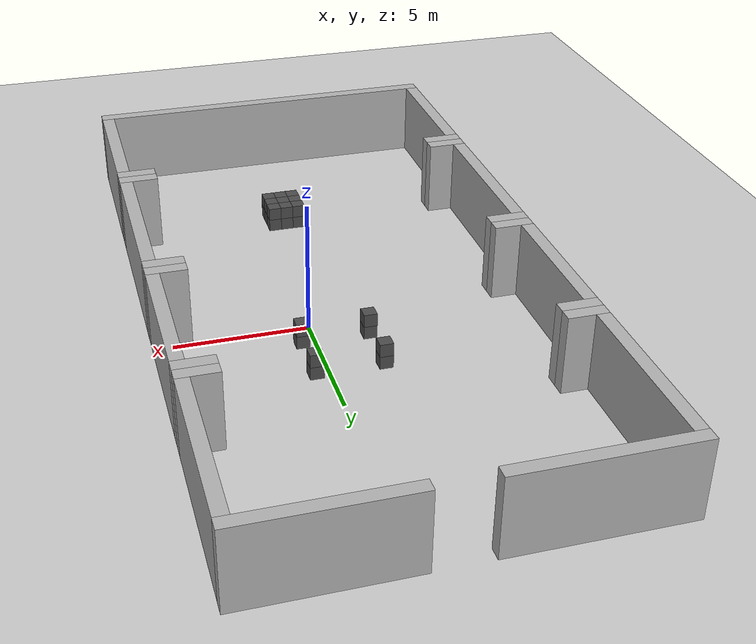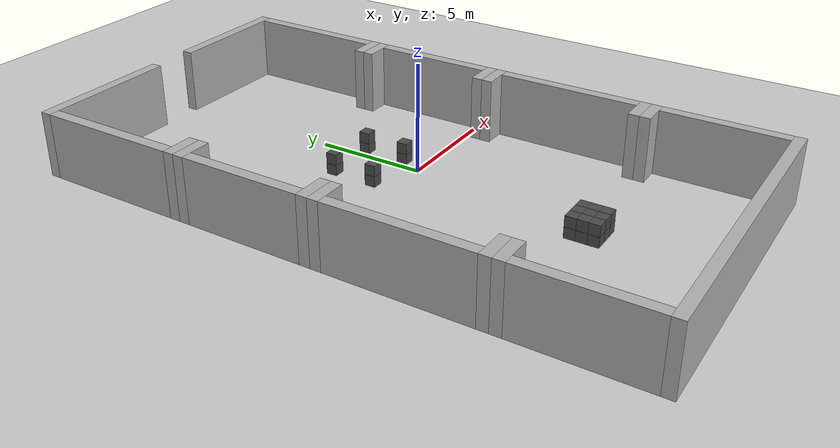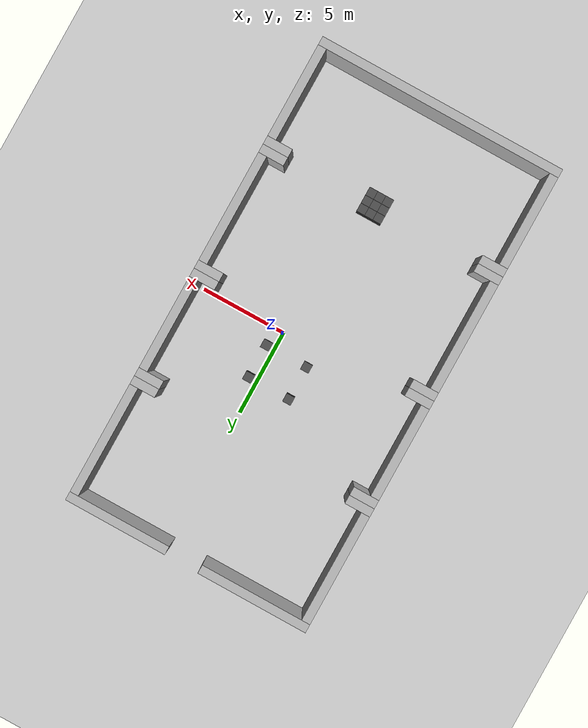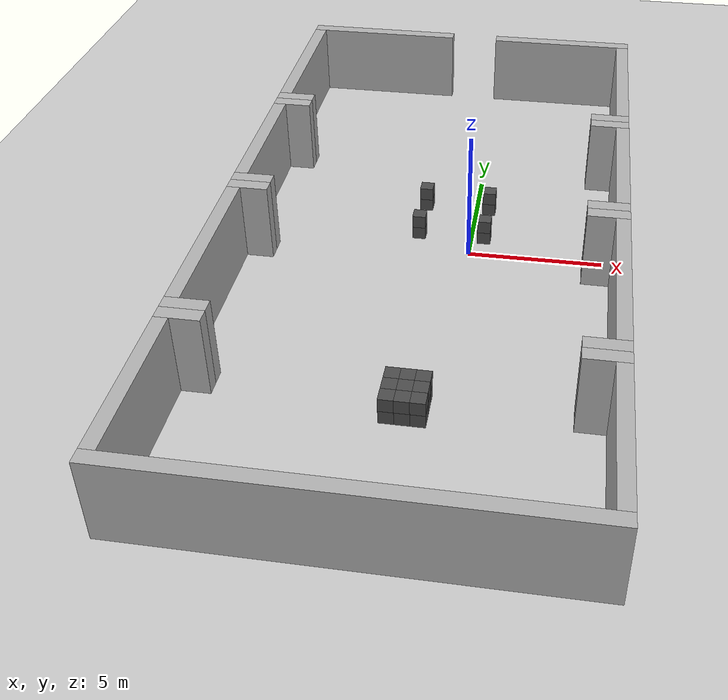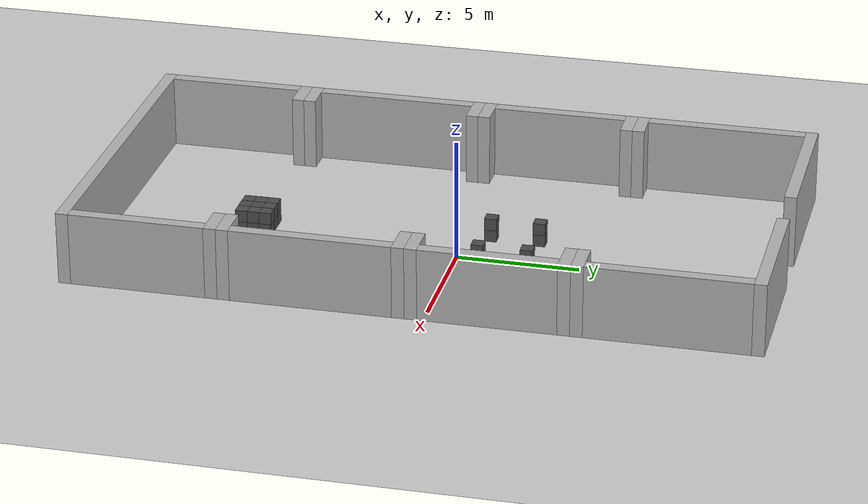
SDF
<sdf version="1.6">
 <world name="default">
  <light name="sun" type="directional">
   <cast_shadows>0</cast_shadows>
   <pose>0 0 10 0 -0 0</pose>
   <diffuse>0.8 0.8 0.8 1</diffuse>
   <specular>0.2 0.2 0.2 1</specular>
   <attenuation>
    <range>1000</range>
    <constant>0.9</constant>
    <linear>0.01</linear>
    <quadratic>0.001</quadratic>
   </attenuation>
   <direction>-0.5 0.1 -0.9</direction>
  </light>
  <include><uri>model://ground_plane</uri></include>
  <gravity>0 0 -9.8</gravity>
  <magnetic_field>6e-06 2.3e-05 -4.2e-05</magnetic_field>
  <atmosphere type="adiabatic"/>
  <physics name="default_physics" default="0" type="ode">
   <max_step_size>0.001</max_step_size>
   <real_time_factor>1</real_time_factor>
   <real_time_update_rate>1000</real_time_update_rate>
  </physics>
  <scene><ambient>0.4 0.4 0.4 1</ambient><background>0.7 0.7 0.7 1</background><shadows>0</shadows></scene>
  <spherical_coordinates>
   <surface_model>EARTH_WGS84</surface_model>
   <latitude_deg>0</latitude_deg>
   <longitude_deg>0</longitude_deg>
   <elevation>0</elevation>
   <heading_deg>0</heading_deg>
  </spherical_coordinates>
  <model name="wall_0">
   <pose frame="sim_world">-8.5 -11.5 1.5 0 0 0</pose>
   <static>True</static>
   <link name="wall_0_link">
    <inertial>
     <mass>100</mass>
     <inertia>
      <ixx>0.166667</ixx>
      <ixy>0</ixy>
      <ixz>0</ixz>
      <iyy>0.166667</iyy>
      <iyz>0</iyz>
      <izz>0.166667</izz>
     </inertia>
    </inertial>
    <collision name="wall_0_collision">
     <geometry><box><size>0.5 5.5 3.0</size></box></geometry>
     <max_contacts>100</max_contacts>
    </collision>
    <visual name="wall_0_visual">
     <geometry><box><size>0.5 5.5 3.0</size></box></geometry>
     <material><ambient>0.7 0.7 0.7 1</ambient><diffuse>0.7 0.7 0.7 1</diffuse></material>
    </visual>
   </link>
  </model>
  <model name="wall_1">
   <pose frame="sim_world">-8.5 -4.5 1.5 0 0 0</pose>
   <static>True</static>
   <link name="wall_1_link">
    <inertial>
     <mass>100</mass>
     <inertia>
      <ixx>0.166667</ixx>
      <ixy>0</ixy>
      <ixz>0</ixz>
      <iyy>0.166667</iyy>
      <iyz>0</iyz>
      <izz>0.166667</izz>
     </inertia>
    </inertial>
    <collision name="wall_1_collision">
     <geometry><box><size>0.5 6.5 3.0</size></box></geometry>
     <max_contacts>100</max_contacts>
    </collision>
    <visual name="wall_1_visual">
     <geometry><box><size>0.5 6.5 3.0</size></box></geometry>
     <material><ambient>0.7 0.7 0.7 1</ambient><diffuse>0.7 0.7 0.7 1</diffuse></material>
    </visual>
   </link>
  </model>
  <model name="wall_2">
   <pose frame="sim_world">-8.5 2.5 1.5 0 0 0</pose>
   <static>True</static>
   <link name="wall_2_link">
    <inertial>
     <mass>100</mass>
     <inertia>
      <ixx>0.166667</ixx>
      <ixy>0</ixy>
      <ixz>0</ixz>
      <iyy>0.166667</iyy>
      <iyz>0</iyz>
      <izz>0.166667</izz>
     </inertia>
    </inertial>
    <collision name="wall_2_collision">
     <geometry><box><size>0.5 5.5 3.0</size></box></geometry>
     <max_contacts>100</max_contacts>
    </collision>
    <visual name="wall_2_visual">
     <geometry><box><size>0.5 5.5 3.0</size></box></geometry>
     <material><ambient>0.7 0.7 0.7 1</ambient><diffuse>0.7 0.7 0.7 1</diffuse></material>
    </visual>
   </link>
  </model>
  <model name="wall_3">
   <pose frame="sim_world">-8.5 9.5 1.5 0 0 0</pose>
   <static>True</static>
   <link name="wall_3_link">
    <inertial>
     <mass>100</mass>
     <inertia>
      <ixx>0.166667</ixx>
      <ixy>0</ixy>
      <ixz>0</ixz>
      <iyy>0.166667</iyy>
      <iyz>0</iyz>
      <izz>0.166667</izz>
     </inertia>
    </inertial>
    <collision name="wall_3_collision">
     <geometry><box><size>0.5 6.5 3.0</size></box></geometry>
     <max_contacts>100</max_contacts>
    </collision>
    <visual name="wall_3_visual">
     <geometry><box><size>0.5 6.5 3.0</size></box></geometry>
     <material><ambient>0.7 0.7 0.7 1</ambient><diffuse>0.7 0.7 0.7 1</diffuse></material>
    </visual>
   </link>
  </model>
  <model name="wall_4">
   <pose frame="sim_world">5.5 -11.5 1.5 0 0 0</pose>
   <static>True</static>
   <link name="wall_4_link">
    <inertial>
     <mass>100</mass>
     <inertia>
      <ixx>0.166667</ixx>
      <ixy>0</ixy>
      <ixz>0</ixz>
      <iyy>0.166667</iyy>
      <iyz>0</iyz>
      <izz>0.166667</izz>
     </inertia>
    </inertial>
    <collision name="wall_4_collision">
     <geometry><box><size>0.5 5.5 3.0</size></box></geometry>
     <max_contacts>100</max_contacts>
    </collision>
    <visual name="wall_4_visual">
     <geometry><box><size>0.5 5.5 3.0</size></box></geometry>
     <material><ambient>0.7 0.7 0.7 1</ambient><diffuse>0.7 0.7 0.7 1</diffuse></material>
    </visual>
   </link>
  </model>
  <model name="wall_5">
   <pose frame="sim_world">5.5 -4.5 1.5 0 0 0</pose>
   <static>True</static>
   <link name="wall_5_link">
    <inertial>
     <mass>100</mass>
     <inertia>
      <ixx>0.166667</ixx>
      <ixy>0</ixy>
      <ixz>0</ixz>
      <iyy>0.166667</iyy>
      <iyz>0</iyz>
      <izz>0.166667</izz>
     </inertia>
    </inertial>
    <collision name="wall_5_collision">
     <geometry><box><size>0.5 6.5 3.0</size></box></geometry>
     <max_contacts>100</max_contacts>
    </collision>
    <visual name="wall_5_visual">
     <geometry><box><size>0.5 6.5 3.0</size></box></geometry>
     <material><ambient>0.7 0.7 0.7 1</ambient><diffuse>0.7 0.7 0.7 1</diffuse></material>
    </visual>
   </link>
  </model>
  <model name="wall_6">
   <pose frame="sim_world">5.5 2.5 1.5 0 0 0</pose>
   <static>True</static>
   <link name="wall_6_link">
    <inertial>
     <mass>100</mass>
     <inertia>
      <ixx>0.166667</ixx>
      <ixy>0</ixy>
      <ixz>0</ixz>
      <iyy>0.166667</iyy>
      <iyz>0</iyz>
      <izz>0.166667</izz>
     </inertia>
    </inertial>
    <collision name="wall_6_collision">
     <geometry><box><size>0.5 5.5 3.0</size></box></geometry>
     <max_contacts>100</max_contacts>
    </collision>
    <visual name="wall_6_visual">
     <geometry><box><size>0.5 5.5 3.0</size></box></geometry>
     <material><ambient>0.7 0.7 0.7 1</ambient><diffuse>0.7 0.7 0.7 1</diffuse></material>
    </visual>
   </link>
  </model>
  <model name="wall_7">
   <pose frame="sim_world">5.5 9.5 1.5 0 0 0</pose>
   <static>True</static>
   <link name="wall_7_link">
    <inertial>
     <mass>100</mass>
     <inertia>
      <ixx>0.166667</ixx>
      <ixy>0</ixy>
      <ixz>0</ixz>
      <iyy>0.166667</iyy>
      <iyz>0</iyz>
      <izz>0.166667</izz>
     </inertia>
    </inertial>
    <collision name="wall_7_collision">
     <geometry><box><size>0.5 6.5 3.0</size></box></geometry>
     <max_contacts>100</max_contacts>
    </collision>
    <visual name="wall_7_visual">
     <geometry><box><size>0.5 6.5 3.0</size></box></geometry>
     <material><ambient>0.7 0.7 0.7 1</ambient><diffuse>0.7 0.7 0.7 1</diffuse></material>
    </visual>
   </link>
  </model>
  <model name="wall_8">
   <pose frame="sim_world">-1.5 -14.5 1.5 0 0 0</pose>
   <static>True</static>
   <link name="wall_8_link">
    <inertial>
     <mass>100</mass>
     <inertia>
      <ixx>0.166667</ixx>
      <ixy>0</ixy>
      <ixz>0</ixz>
      <iyy>0.166667</iyy>
      <iyz>0</iyz>
      <izz>0.166667</izz>
     </inertia>
    </inertial>
    <collision name="wall_8_collision">
     <geometry><box><size>14.5 0.5 3.0</size></box></geometry>
     <max_contacts>100</max_contacts>
    </collision>
    <visual name="wall_8_visual">
     <geometry><box><size>14.5 0.5 3.0</size></box></geometry>
     <material><ambient>0.7 0.7 0.7 1</ambient><diffuse>0.7 0.7 0.7 1</diffuse></material>
    </visual>
   </link>
  </model>
  <model name="wall_9">
   <pose frame="sim_world">-8.0 -8.5 1.5 0 0 0</pose>
   <static>True</static>
   <link name="wall_9_link">
    <inertial>
     <mass>100</mass>
     <inertia>
      <ixx>0.166667</ixx>
      <ixy>0</ixy>
      <ixz>0</ixz>
      <iyy>0.166667</iyy>
      <iyz>0</iyz>
      <izz>0.166667</izz>
     </inertia>
    </inertial>
    <collision name="wall_9_collision">
     <geometry><box><size>1.5 0.5 3.0</size></box></geometry>
     <max_contacts>100</max_contacts>
    </collision>
    <visual name="wall_9_visual">
     <geometry><box><size>1.5 0.5 3.0</size></box></geometry>
     <material><ambient>0.7 0.7 0.7 1</ambient><diffuse>0.7 0.7 0.7 1</diffuse></material>
    </visual>
   </link>
  </model>
  <model name="wall_10">
   <pose frame="sim_world">5.0 -8.5 1.5 0 0 0</pose>
   <static>True</static>
   <link name="wall_10_link">
    <inertial>
     <mass>100</mass>
     <inertia>
      <ixx>0.166667</ixx>
      <ixy>0</ixy>
      <ixz>0</ixz>
      <iyy>0.166667</iyy>
      <iyz>0</iyz>
      <izz>0.166667</izz>
     </inertia>
    </inertial>
    <collision name="wall_10_collision">
     <geometry><box><size>1.5 0.5 3.0</size></box></geometry>
     <max_contacts>100</max_contacts>
    </collision>
    <visual name="wall_10_visual">
     <geometry><box><size>1.5 0.5 3.0</size></box></geometry>
     <material><ambient>0.7 0.7 0.7 1</ambient><diffuse>0.7 0.7 0.7 1</diffuse></material>
    </visual>
   </link>
  </model>
  <model name="wall_11">
   <pose frame="sim_world">-8.0 -8.0 1.5 0 0 0</pose>
   <static>True</static>
   <link name="wall_11_link">
    <inertial>
     <mass>100</mass>
     <inertia>
      <ixx>0.166667</ixx>
      <ixy>0</ixy>
      <ixz>0</ixz>
      <iyy>0.166667</iyy>
      <iyz>0</iyz>
      <izz>0.166667</izz>
     </inertia>
    </inertial>
    <collision name="wall_11_collision">
     <geometry><box><size>1.5 0.5 3.0</size></box></geometry>
     <max_contacts>100</max_contacts>
    </collision>
    <visual name="wall_11_visual">
     <geometry><box><size>1.5 0.5 3.0</size></box></geometry>
     <material><ambient>0.7 0.7 0.7 1</ambient><diffuse>0.7 0.7 0.7 1</diffuse></material>
    </visual>
   </link>
  </model>
  <model name="wall_12">
   <pose frame="sim_world">5.0 -8.0 1.5 0 0 0</pose>
   <static>True</static>
   <link name="wall_12_link">
    <inertial>
     <mass>100</mass>
     <inertia>
      <ixx>0.166667</ixx>
      <ixy>0</ixy>
      <ixz>0</ixz>
      <iyy>0.166667</iyy>
      <iyz>0</iyz>
      <izz>0.166667</izz>
     </inertia>
    </inertial>
    <collision name="wall_12_collision">
     <geometry><box><size>1.5 0.5 3.0</size></box></geometry>
     <max_contacts>100</max_contacts>
    </collision>
    <visual name="wall_12_visual">
     <geometry><box><size>1.5 0.5 3.0</size></box></geometry>
     <material><ambient>0.7 0.7 0.7 1</ambient><diffuse>0.7 0.7 0.7 1</diffuse></material>
    </visual>
   </link>
  </model>
  <model name="wall_13">
   <pose frame="sim_world">-8.0 -1.0 1.5 0 0 0</pose>
   <static>True</static>
   <link name="wall_13_link">
    <inertial>
     <mass>100</mass>
     <inertia>
      <ixx>0.166667</ixx>
      <ixy>0</ixy>
      <ixz>0</ixz>
      <iyy>0.166667</iyy>
      <iyz>0</iyz>
      <izz>0.166667</izz>
     </inertia>
    </inertial>
    <collision name="wall_13_collision">
     <geometry><box><size>1.5 0.5 3.0</size></box></geometry>
     <max_contacts>100</max_contacts>
    </collision>
    <visual name="wall_13_visual">
     <geometry><box><size>1.5 0.5 3.0</size></box></geometry>
     <material><ambient>0.7 0.7 0.7 1</ambient><diffuse>0.7 0.7 0.7 1</diffuse></material>
    </visual>
   </link>
  </model>
  <model name="wall_14">
   <pose frame="sim_world">5.0 -1.0 1.5 0 0 0</pose>
   <static>True</static>
   <link name="wall_14_link">
    <inertial>
     <mass>100</mass>
     <inertia>
      <ixx>0.166667</ixx>
      <ixy>0</ixy>
      <ixz>0</ixz>
      <iyy>0.166667</iyy>
      <iyz>0</iyz>
      <izz>0.166667</izz>
     </inertia>
    </inertial>
    <collision name="wall_14_collision">
     <geometry><box><size>1.5 0.5 3.0</size></box></geometry>
     <max_contacts>100</max_contacts>
    </collision>
    <visual name="wall_14_visual">
     <geometry><box><size>1.5 0.5 3.0</size></box></geometry>
     <material><ambient>0.7 0.7 0.7 1</ambient><diffuse>0.7 0.7 0.7 1</diffuse></material>
    </visual>
   </link>
  </model>
  <model name="wall_15">
   <pose frame="sim_world">-8.0 -0.5 1.5 0 0 0</pose>
   <static>True</static>
   <link name="wall_15_link">
    <inertial>
     <mass>100</mass>
     <inertia>
      <ixx>0.166667</ixx>
      <ixy>0</ixy>
      <ixz>0</ixz>
      <iyy>0.166667</iyy>
      <iyz>0</iyz>
      <izz>0.166667</izz>
     </inertia>
    </inertial>
    <collision name="wall_15_collision">
     <geometry><box><size>1.5 0.5 3.0</size></box></geometry>
     <max_contacts>100</max_contacts>
    </collision>
    <visual name="wall_15_visual">
     <geometry><box><size>1.5 0.5 3.0</size></box></geometry>
     <material><ambient>0.7 0.7 0.7 1</ambient><diffuse>0.7 0.7 0.7 1</diffuse></material>
    </visual>
   </link>
  </model>
  <model name="wall_16">
   <pose frame="sim_world">5.0 -0.5 1.5 0 0 0</pose>
   <static>True</static>
   <link name="wall_16_link">
    <inertial>
     <mass>100</mass>
     <inertia>
      <ixx>0.166667</ixx>
      <ixy>0</ixy>
      <ixz>0</ixz>
      <iyy>0.166667</iyy>
      <iyz>0</iyz>
      <izz>0.166667</izz>
     </inertia>
    </inertial>
    <collision name="wall_16_collision">
     <geometry><box><size>1.5 0.5 3.0</size></box></geometry>
     <max_contacts>100</max_contacts>
    </collision>
    <visual name="wall_16_visual">
     <geometry><box><size>1.5 0.5 3.0</size></box></geometry>
     <material><ambient>0.7 0.7 0.7 1</ambient><diffuse>0.7 0.7 0.7 1</diffuse></material>
    </visual>
   </link>
  </model>
  <model name="wall_17">
   <pose frame="sim_world">-8.0 5.5 1.5 0 0 0</pose>
   <static>True</static>
   <link name="wall_17_link">
    <inertial>
     <mass>100</mass>
     <inertia>
      <ixx>0.166667</ixx>
      <ixy>0</ixy>
      <ixz>0</ixz>
      <iyy>0.166667</iyy>
      <iyz>0</iyz>
      <izz>0.166667</izz>
     </inertia>
    </inertial>
    <collision name="wall_17_collision">
     <geometry><box><size>1.5 0.5 3.0</size></box></geometry>
     <max_contacts>100</max_contacts>
    </collision>
    <visual name="wall_17_visual">
     <geometry><box><size>1.5 0.5 3.0</size></box></geometry>
     <material><ambient>0.7 0.7 0.7 1</ambient><diffuse>0.7 0.7 0.7 1</diffuse></material>
    </visual>
   </link>
  </model>
  <model name="wall_18">
   <pose frame="sim_world">5.0 5.5 1.5 0 0 0</pose>
   <static>True</static>
   <link name="wall_18_link">
    <inertial>
     <mass>100</mass>
     <inertia>
      <ixx>0.166667</ixx>
      <ixy>0</ixy>
      <ixz>0</ixz>
      <iyy>0.166667</iyy>
      <iyz>0</iyz>
      <izz>0.166667</izz>
     </inertia>
    </inertial>
    <collision name="wall_18_collision">
     <geometry><box><size>1.5 0.5 3.0</size></box></geometry>
     <max_contacts>100</max_contacts>
    </collision>
    <visual name="wall_18_visual">
     <geometry><box><size>1.5 0.5 3.0</size></box></geometry>
     <material><ambient>0.7 0.7 0.7 1</ambient><diffuse>0.7 0.7 0.7 1</diffuse></material>
    </visual>
   </link>
  </model>
  <model name="wall_19">
   <pose frame="sim_world">-8.0 6.0 1.5 0 0 0</pose>
   <static>True</static>
   <link name="wall_19_link">
    <inertial>
     <mass>100</mass>
     <inertia>
      <ixx>0.166667</ixx>
      <ixy>0</ixy>
      <ixz>0</ixz>
      <iyy>0.166667</iyy>
      <iyz>0</iyz>
      <izz>0.166667</izz>
     </inertia>
    </inertial>
    <collision name="wall_19_collision">
     <geometry><box><size>1.5 0.5 3.0</size></box></geometry>
     <max_contacts>100</max_contacts>
    </collision>
    <visual name="wall_19_visual">
     <geometry><box><size>1.5 0.5 3.0</size></box></geometry>
     <material><ambient>0.7 0.7 0.7 1</ambient><diffuse>0.7 0.7 0.7 1</diffuse></material>
    </visual>
   </link>
  </model>
  <model name="wall_20">
   <pose frame="sim_world">5.0 6.0 1.5 0 0 0</pose>
   <static>True</static>
   <link name="wall_20_link">
    <inertial>
     <mass>100</mass>
     <inertia>
      <ixx>0.166667</ixx>
      <ixy>0</ixy>
      <ixz>0</ixz>
      <iyy>0.166667</iyy>
      <iyz>0</iyz>
      <izz>0.166667</izz>
     </inertia>
    </inertial>
    <collision name="wall_20_collision">
     <geometry><box><size>1.5 0.5 3.0</size></box></geometry>
     <max_contacts>100</max_contacts>
    </collision>
    <visual name="wall_20_visual">
     <geometry><box><size>1.5 0.5 3.0</size></box></geometry>
     <material><ambient>0.7 0.7 0.7 1</ambient><diffuse>0.7 0.7 0.7 1</diffuse></material>
    </visual>
   </link>
  </model>
  <model name="wall_21">
   <pose frame="sim_world">-5.5 13.0 1.5 0 0 0</pose>
   <static>True</static>
   <link name="wall_21_link">
    <inertial>
     <mass>100</mass>
     <inertia>
      <ixx>0.166667</ixx>
      <ixy>0</ixy>
      <ixz>0</ixz>
      <iyy>0.166667</iyy>
      <iyz>0</iyz>
      <izz>0.166667</izz>
     </inertia>
    </inertial>
    <collision name="wall_21_collision">
     <geometry><box><size>6.5 0.5 3.0</size></box></geometry>
     <max_contacts>100</max_contacts>
    </collision>
    <visual name="wall_21_visual">
     <geometry><box><size>6.5 0.5 3.0</size></box></geometry>
     <material><ambient>0.7 0.7 0.7 1</ambient><diffuse>0.7 0.7 0.7 1</diffuse></material>
    </visual>
   </link>
  </model>
  <model name="wall_22">
   <pose frame="sim_world">2.75 13.0 1.5 0 0 0</pose>
   <static>True</static>
   <link name="wall_22_link">
    <inertial>
     <mass>100</mass>
     <inertia>
      <ixx>0.166667</ixx>
      <ixy>0</ixy>
      <ixz>0</ixz>
      <iyy>0.166667</iyy>
      <iyz>0</iyz>
      <izz>0.166667</izz>
     </inertia>
    </inertial>
    <collision name="wall_22_collision">
     <geometry><box><size>6.0 0.5 3.0</size></box></geometry>
     <max_contacts>100</max_contacts>
    </collision>
    <visual name="wall_22_visual">
     <geometry><box><size>6.0 0.5 3.0</size></box></geometry>
     <material><ambient>0.7 0.7 0.7 1</ambient><diffuse>0.7 0.7 0.7 1</diffuse></material>
    </visual>
   </link>
  </model>
  <model name="box_0">
   <pose frame="sim_world">-2.0 1.0 0.25 0 -0 0</pose>
   <static>True</static>
   <link name="box_0_link">
    <inertial>
     <mass>100</mass>
     <inertia>
      <ixx>0.166667</ixx>
      <ixy>0</ixy>
      <ixz>0</ixz>
      <iyy>0.166667</iyy>
      <iyz>0</iyz>
      <izz>0.166667</izz>
     </inertia>
    </inertial>
    <collision name="box_0_collision">
     <geometry><box><size>0.5 0.5 0.5</size></box></geometry>
     <max_contacts>100</max_contacts>
    </collision>
    <visual name="box_0_visual">
     <geometry><box><size>0.5 0.5 0.5</size></box></geometry>
     <material><ambient>0.3 0.3 0.3 1</ambient><diffuse>0.3 0.3 0.3 1</diffuse></material>
    </visual>
   </link>
  </model>
  <model name="box_1">
   <pose frame="sim_world">-2.0 1.0 0.75 0 -0 0</pose>
   <static>True</static>
   <link name="box_1_link">
    <inertial>
     <mass>100</mass>
     <inertia>
      <ixx>0.166667</ixx>
      <ixy>0</ixy>
      <ixz>0</ixz>
      <iyy>0.166667</iyy>
      <iyz>0</iyz>
      <izz>0.166667</izz>
     </inertia>
    </inertial>
    <collision name="box_1_collision">
     <geometry><box><size>0.5 0.5 0.5</size></box></geometry>
     <max_contacts>100</max_contacts>
    </collision>
    <visual name="box_1_visual">
     <geometry><box><size>0.5 0.5 0.5</size></box></geometry>
     <material><ambient>0.3 0.3 0.3 1</ambient><diffuse>0.3 0.3 0.3 1</diffuse></material>
    </visual>
   </link>
  </model>
  <model name="box_2">
   <pose frame="sim_world">-2.0 3.0 0.25 0 -0 0</pose>
   <static>True</static>
   <link name="box_2_link">
    <inertial>
     <mass>100</mass>
     <inertia>
      <ixx>0.166667</ixx>
      <ixy>0</ixy>
      <ixz>0</ixz>
      <iyy>0.166667</iyy>
      <iyz>0</iyz>
      <izz>0.166667</izz>
     </inertia>
    </inertial>
    <collision name="box_2_collision">
     <geometry><box><size>0.5 0.5 0.5</size></box></geometry>
     <max_contacts>100</max_contacts>
    </collision>
    <visual name="box_2_visual">
     <geometry><box><size>0.5 0.5 0.5</size></box></geometry>
     <material><ambient>0.3 0.3 0.3 1</ambient><diffuse>0.3 0.3 0.3 1</diffuse></material>
    </visual>
   </link>
  </model>
  <model name="box_3">
   <pose frame="sim_world">-2.0 3.0 0.75 0 -0 0</pose>
   <static>True</static>
   <link name="box_3_link">
    <inertial>
     <mass>100</mass>
     <inertia>
      <ixx>0.166667</ixx>
      <ixy>0</ixy>
      <ixz>0</ixz>
      <iyy>0.166667</iyy>
      <iyz>0</iyz>
      <izz>0.166667</izz>
     </inertia>
    </inertial>
    <collision name="box_3_collision">
     <geometry><box><size>0.5 0.5 0.5</size></box></geometry>
     <max_contacts>100</max_contacts>
    </collision>
    <visual name="box_3_visual">
     <geometry><box><size>0.5 0.5 0.5</size></box></geometry>
     <material><ambient>0.3 0.3 0.3 1</ambient><diffuse>0.3 0.3 0.3 1</diffuse></material>
    </visual>
   </link>
  </model>
  <model name="box_4">
   <pose frame="sim_world">-1.5 -9.0 0.25 0 -0 0</pose>
   <static>True</static>
   <link name="box_4_link">
    <inertial>
     <mass>100</mass>
     <inertia>
      <ixx>0.166667</ixx>
      <ixy>0</ixy>
      <ixz>0</ixz>
      <iyy>0.166667</iyy>
      <iyz>0</iyz>
      <izz>0.166667</izz>
     </inertia>
    </inertial>
    <collision name="box_4_collision">
     <geometry><box><size>0.5 0.5 0.5</size></box></geometry>
     <max_contacts>100</max_contacts>
    </collision>
    <visual name="box_4_visual">
     <geometry><box><size>0.5 0.5 0.5</size></box></geometry>
     <material><ambient>0.3 0.3 0.3 1</ambient><diffuse>0.3 0.3 0.3 1</diffuse></material>
    </visual>
   </link>
  </model>
  <model name="box_5">
   <pose frame="sim_world">-1.5 -9.0 0.75 0 -0 0</pose>
   <static>True</static>
   <link name="box_5_link">
    <inertial>
     <mass>100</mass>
     <inertia>
      <ixx>0.166667</ixx>
      <ixy>0</ixy>
      <ixz>0</ixz>
      <iyy>0.166667</iyy>
      <iyz>0</iyz>
      <izz>0.166667</izz>
     </inertia>
    </inertial>
    <collision name="box_5_collision">
     <geometry><box><size>0.5 0.5 0.5</size></box></geometry>
     <max_contacts>100</max_contacts>
    </collision>
    <visual name="box_5_visual">
     <geometry><box><size>0.5 0.5 0.5</size></box></geometry>
     <material><ambient>0.3 0.3 0.3 1</ambient><diffuse>0.3 0.3 0.3 1</diffuse></material>
    </visual>
   </link>
  </model>
  <model name="box_6">
   <pose frame="sim_world">-1.5 -8.5 0.25 0 -0 0</pose>
   <static>True</static>
   <link name="box_6_link">
    <inertial>
     <mass>100</mass>
     <inertia>
      <ixx>0.166667</ixx>
      <ixy>0</ixy>
      <ixz>0</ixz>
      <iyy>0.166667</iyy>
      <iyz>0</iyz>
      <izz>0.166667</izz>
     </inertia>
    </inertial>
    <collision name="box_6_collision">
     <geometry><box><size>0.5 0.5 0.5</size></box></geometry>
     <max_contacts>100</max_contacts>
    </collision>
    <visual name="box_6_visual">
     <geometry><box><size>0.5 0.5 0.5</size></box></geometry>
     <material><ambient>0.3 0.3 0.3 1</ambient><diffuse>0.3 0.3 0.3 1</diffuse></material>
    </visual>
   </link>
  </model>
  <model name="box_7">
   <pose frame="sim_world">-1.5 -8.5 0.75 0 -0 0</pose>
   <static>True</static>
   <link name="box_7_link">
    <inertial>
     <mass>100</mass>
     <inertia>
      <ixx>0.166667</ixx>
      <ixy>0</ixy>
      <ixz>0</ixz>
      <iyy>0.166667</iyy>
      <iyz>0</iyz>
      <izz>0.166667</izz>
     </inertia>
    </inertial>
    <collision name="box_7_collision">
     <geometry><box><size>0.5 0.5 0.5</size></box></geometry>
     <max_contacts>100</max_contacts>
    </collision>
    <visual name="box_7_visual">
     <geometry><box><size>0.5 0.5 0.5</size></box></geometry>
     <material><ambient>0.3 0.3 0.3 1</ambient><diffuse>0.3 0.3 0.3 1</diffuse></material>
    </visual>
   </link>
  </model>
  <model name="box_8">
   <pose frame="sim_world">-1.5 -8.0 0.25 0 -0 0</pose>
   <static>True</static>
   <link name="box_8_link">
    <inertial>
     <mass>100</mass>
     <inertia>
      <ixx>0.166667</ixx>
      <ixy>0</ixy>
      <ixz>0</ixz>
      <iyy>0.166667</iyy>
      <iyz>0</iyz>
      <izz>0.166667</izz>
     </inertia>
    </inertial>
    <collision name="box_8_collision">
     <geometry><box><size>0.5 0.5 0.5</size></box></geometry>
     <max_contacts>100</max_contacts>
    </collision>
    <visual name="box_8_visual">
     <geometry><box><size>0.5 0.5 0.5</size></box></geometry>
     <material><ambient>0.3 0.3 0.3 1</ambient><diffuse>0.3 0.3 0.3 1</diffuse></material>
    </visual>
   </link>
  </model>
  <model name="box_9">
   <pose frame="sim_world">-1.5 -8.0 0.75 0 -0 0</pose>
   <static>True</static>
   <link name="box_9_link">
    <inertial>
     <mass>100</mass>
     <inertia>
      <ixx>0.166667</ixx>
      <ixy>0</ixy>
      <ixz>0</ixz>
      <iyy>0.166667</iyy>
      <iyz>0</iyz>
      <izz>0.166667</izz>
     </inertia>
    </inertial>
    <collision name="box_9_collision">
     <geometry><box><size>0.5 0.5 0.5</size></box></geometry>
     <max_contacts>100</max_contacts>
    </collision>
    <visual name="box_9_visual">
     <geometry><box><size>0.5 0.5 0.5</size></box></geometry>
     <material><ambient>0.3 0.3 0.3 1</ambient><diffuse>0.3 0.3 0.3 1</diffuse></material>
    </visual>
   </link>
  </model>
  <model name="box_10">
   <pose frame="sim_world">-1.0 -9.0 0.25 0 -0 0</pose>
   <static>True</static>
   <link name="box_10_link">
    <inertial>
     <mass>100</mass>
     <inertia>
      <ixx>0.166667</ixx>
      <ixy>0</ixy>
      <ixz>0</ixz>
      <iyy>0.166667</iyy>
      <iyz>0</iyz>
      <izz>0.166667</izz>
     </inertia>
    </inertial>
    <collision name="box_10_collision">
     <geometry><box><size>0.5 0.5 0.5</size></box></geometry>
     <max_contacts>100</max_contacts>
    </collision>
    <visual name="box_10_visual">
     <geometry><box><size>0.5 0.5 0.5</size></box></geometry>
     <material><ambient>0.3 0.3 0.3 1</ambient><diffuse>0.3 0.3 0.3 1</diffuse></material>
    </visual>
   </link>
  </model>
  <model name="box_11">
   <pose frame="sim_world">-1.0 -9.0 0.75 0 -0 0</pose>
   <static>True</static>
   <link name="box_11_link">
    <inertial>
     <mass>100</mass>
     <inertia>
      <ixx>0.166667</ixx>
      <ixy>0</ixy>
      <ixz>0</ixz>
      <iyy>0.166667</iyy>
      <iyz>0</iyz>
      <izz>0.166667</izz>
     </inertia>
    </inertial>
    <collision name="box_11_collision">
     <geometry><box><size>0.5 0.5 0.5</size></box></geometry>
     <max_contacts>100</max_contacts>
    </collision>
    <visual name="box_11_visual">
     <geometry><box><size>0.5 0.5 0.5</size></box></geometry>
     <material><ambient>0.3 0.3 0.3 1</ambient><diffuse>0.3 0.3 0.3 1</diffuse></material>
    </visual>
   </link>
  </model>
  <model name="box_12">
   <pose frame="sim_world">-1.0 -8.5 0.25 0 -0 0</pose>
   <static>True</static>
   <link name="box_12_link">
    <inertial>
     <mass>100</mass>
     <inertia>
      <ixx>0.166667</ixx>
      <ixy>0</ixy>
      <ixz>0</ixz>
      <iyy>0.166667</iyy>
      <iyz>0</iyz>
      <izz>0.166667</izz>
     </inertia>
    </inertial>
    <collision name="box_12_collision">
     <geometry><box><size>0.5 0.5 0.5</size></box></geometry>
     <max_contacts>100</max_contacts>
    </collision>
    <visual name="box_12_visual">
     <geometry><box><size>0.5 0.5 0.5</size></box></geometry>
     <material><ambient>0.3 0.3 0.3 1</ambient><diffuse>0.3 0.3 0.3 1</diffuse></material>
    </visual>
   </link>
  </model>
  <model name="box_13">
   <pose frame="sim_world">-1.0 -8.5 0.75 0 -0 0</pose>
   <static>True</static>
   <link name="box_13_link">
    <inertial>
     <mass>100</mass>
     <inertia>
      <ixx>0.166667</ixx>
      <ixy>0</ixy>
      <ixz>0</ixz>
      <iyy>0.166667</iyy>
      <iyz>0</iyz>
      <izz>0.166667</izz>
     </inertia>
    </inertial>
    <collision name="box_13_collision">
     <geometry><box><size>0.5 0.5 0.5</size></box></geometry>
     <max_contacts>100</max_contacts>
    </collision>
    <visual name="box_13_visual">
     <geometry><box><size>0.5 0.5 0.5</size></box></geometry>
     <material><ambient>0.3 0.3 0.3 1</ambient><diffuse>0.3 0.3 0.3 1</diffuse></material>
    </visual>
   </link>
  </model>
  <model name="box_14">
   <pose frame="sim_world">-1.0 -8.0 0.25 0 -0 0</pose>
   <static>True</static>
   <link name="box_14_link">
    <inertial>
     <mass>100</mass>
     <inertia>
      <ixx>0.166667</ixx>
      <ixy>0</ixy>
      <ixz>0</ixz>
      <iyy>0.166667</iyy>
      <iyz>0</iyz>
      <izz>0.166667</izz>
     </inertia>
    </inertial>
    <collision name="box_14_collision">
     <geometry><box><size>0.5 0.5 0.5</size></box></geometry>
     <max_contacts>100</max_contacts>
    </collision>
    <visual name="box_14_visual">
     <geometry><box><size>0.5 0.5 0.5</size></box></geometry>
     <material><ambient>0.3 0.3 0.3 1</ambient><diffuse>0.3 0.3 0.3 1</diffuse></material>
    </visual>
   </link>
  </model>
  <model name="box_15">
   <pose frame="sim_world">-1.0 -8.0 0.75 0 -0 0</pose>
   <static>True</static>
   <link name="box_15_link">
    <inertial>
     <mass>100</mass>
     <inertia>
      <ixx>0.166667</ixx>
      <ixy>0</ixy>
      <ixz>0</ixz>
      <iyy>0.166667</iyy>
      <iyz>0</iyz>
      <izz>0.166667</izz>
     </inertia>
    </inertial>
    <collision name="box_15_collision">
     <geometry><box><size>0.5 0.5 0.5</size></box></geometry>
     <max_contacts>100</max_contacts>
    </collision>
    <visual name="box_15_visual">
     <geometry><box><size>0.5 0.5 0.5</size></box></geometry>
     <material><ambient>0.3 0.3 0.3 1</ambient><diffuse>0.3 0.3 0.3 1</diffuse></material>
    </visual>
   </link>
  </model>
  <model name="box_16">
   <pose frame="sim_world">-0.5 -9.0 0.25 0 -0 0</pose>
   <static>True</static>
   <link name="box_16_link">
    <inertial>
     <mass>100</mass>
     <inertia>
      <ixx>0.166667</ixx>
      <ixy>0</ixy>
      <ixz>0</ixz>
      <iyy>0.166667</iyy>
      <iyz>0</iyz>
      <izz>0.166667</izz>
     </inertia>
    </inertial>
    <collision name="box_16_collision">
     <geometry><box><size>0.5 0.5 0.5</size></box></geometry>
     <max_contacts>100</max_contacts>
    </collision>
    <visual name="box_16_visual">
     <geometry><box><size>0.5 0.5 0.5</size></box></geometry>
     <material><ambient>0.3 0.3 0.3 1</ambient><diffuse>0.3 0.3 0.3 1</diffuse></material>
    </visual>
   </link>
  </model>
  <model name="box_17">
   <pose frame="sim_world">-0.5 -9.0 0.75 0 -0 0</pose>
   <static>True</static>
   <link name="box_17_link">
    <inertial>
     <mass>100</mass>
     <inertia>
      <ixx>0.166667</ixx>
      <ixy>0</ixy>
      <ixz>0</ixz>
      <iyy>0.166667</iyy>
      <iyz>0</iyz>
      <izz>0.166667</izz>
     </inertia>
    </inertial>
    <collision name="box_17_collision">
     <geometry><box><size>0.5 0.5 0.5</size></box></geometry>
     <max_contacts>100</max_contacts>
    </collision>
    <visual name="box_17_visual">
     <geometry><box><size>0.5 0.5 0.5</size></box></geometry>
     <material><ambient>0.3 0.3 0.3 1</ambient><diffuse>0.3 0.3 0.3 1</diffuse></material>
    </visual>
   </link>
  </model>
  <model name="box_18">
   <pose frame="sim_world">-0.5 -8.5 0.25 0 -0 0</pose>
   <static>True</static>
   <link name="box_18_link">
    <inertial>
     <mass>100</mass>
     <inertia>
      <ixx>0.166667</ixx>
      <ixy>0</ixy>
      <ixz>0</ixz>
      <iyy>0.166667</iyy>
      <iyz>0</iyz>
      <izz>0.166667</izz>
     </inertia>
    </inertial>
    <collision name="box_18_collision">
     <geometry><box><size>0.5 0.5 0.5</size></box></geometry>
     <max_contacts>100</max_contacts>
    </collision>
    <visual name="box_18_visual">
     <geometry><box><size>0.5 0.5 0.5</size></box></geometry>
     <material><ambient>0.3 0.3 0.3 1</ambient><diffuse>0.3 0.3 0.3 1</diffuse></material>
    </visual>
   </link>
  </model>
  <model name="box_19">
   <pose frame="sim_world">-0.5 -8.5 0.75 0 -0 0</pose>
   <static>True</static>
   <link name="box_19_link">
    <inertial>
     <mass>100</mass>
     <inertia>
      <ixx>0.166667</ixx>
      <ixy>0</ixy>
      <ixz>0</ixz>
      <iyy>0.166667</iyy>
      <iyz>0</iyz>
      <izz>0.166667</izz>
     </inertia>
    </inertial>
    <collision name="box_19_collision">
     <geometry><box><size>0.5 0.5 0.5</size></box></geometry>
     <max_contacts>100</max_contacts>
    </collision>
    <visual name="box_19_visual">
     <geometry><box><size>0.5 0.5 0.5</size></box></geometry>
     <material><ambient>0.3 0.3 0.3 1</ambient><diffuse>0.3 0.3 0.3 1</diffuse></material>
    </visual>
   </link>
  </model>
  <model name="box_20">
   <pose frame="sim_world">-0.5 -8.0 0.25 0 -0 0</pose>
   <static>True</static>
   <link name="box_20_link">
    <inertial>
     <mass>100</mass>
     <inertia>
      <ixx>0.166667</ixx>
      <ixy>0</ixy>
      <ixz>0</ixz>
      <iyy>0.166667</iyy>
      <iyz>0</iyz>
      <izz>0.166667</izz>
     </inertia>
    </inertial>
    <collision name="box_20_collision">
     <geometry><box><size>0.5 0.5 0.5</size></box></geometry>
     <max_contacts>100</max_contacts>
    </collision>
    <visual name="box_20_visual">
     <geometry><box><size>0.5 0.5 0.5</size></box></geometry>
     <material><ambient>0.3 0.3 0.3 1</ambient><diffuse>0.3 0.3 0.3 1</diffuse></material>
    </visual>
   </link>
  </model>
  <model name="box_21">
   <pose frame="sim_world">-0.5 -8.0 0.75 0 -0 0</pose>
   <static>True</static>
   <link name="box_21_link">
    <inertial>
     <mass>100</mass>
     <inertia>
      <ixx>0.166667</ixx>
      <ixy>0</ixy>
      <ixz>0</ixz>
      <iyy>0.166667</iyy>
      <iyz>0</iyz>
      <izz>0.166667</izz>
     </inertia>
    </inertial>
    <collision name="box_21_collision">
     <geometry><box><size>0.5 0.5 0.5</size></box></geometry>
     <max_contacts>100</max_contacts>
    </collision>
    <visual name="box_21_visual">
     <geometry><box><size>0.5 0.5 0.5</size></box></geometry>
     <material><ambient>0.3 0.3 0.3 1</ambient><diffuse>0.3 0.3 0.3 1</diffuse></material>
    </visual>
   </link>
  </model>
  <model name="box_22">
   <pose frame="sim_world">0.5 1.0 0.25 0 -0 0</pose>
   <static>True</static>
   <link name="box_22_link">
    <inertial>
     <mass>100</mass>
     <inertia>
      <ixx>0.166667</ixx>
      <ixy>0</ixy>
      <ixz>0</ixz>
      <iyy>0.166667</iyy>
      <iyz>0</iyz>
      <izz>0.166667</izz>
     </inertia>
    </inertial>
    <collision name="box_22_collision">
     <geometry><box><size>0.5 0.5 0.5</size></box></geometry>
     <max_contacts>100</max_contacts>
    </collision>
    <visual name="box_22_visual">
     <geometry><box><size>0.5 0.5 0.5</size></box></geometry>
     <material><ambient>0.3 0.3 0.3 1</ambient><diffuse>0.3 0.3 0.3 1</diffuse></material>
    </visual>
   </link>
  </model>
  <model name="box_23">
   <pose frame="sim_world">0.5 1.0 0.75 0 -0 0</pose>
   <static>True</static>
   <link name="box_23_link">
    <inertial>
     <mass>100</mass>
     <inertia>
      <ixx>0.166667</ixx>
      <ixy>0</ixy>
      <ixz>0</ixz>
      <iyy>0.166667</iyy>
      <iyz>0</iyz>
      <izz>0.166667</izz>
     </inertia>
    </inertial>
    <collision name="box_23_collision">
     <geometry><box><size>0.5 0.5 0.5</size></box></geometry>
     <max_contacts>100</max_contacts>
    </collision>
    <visual name="box_23_visual">
     <geometry><box><size>0.5 0.5 0.5</size></box></geometry>
     <material><ambient>0.3 0.3 0.3 1</ambient><diffuse>0.3 0.3 0.3 1</diffuse></material>
    </visual>
   </link>
  </model>
  <model name="box_24">
   <pose frame="sim_world">0.5 3.0 0.25 0 -0 0</pose>
   <static>True</static>
   <link name="box_24_link">
    <inertial>
     <mass>100</mass>
     <inertia>
      <ixx>0.166667</ixx>
      <ixy>0</ixy>
      <ixz>0</ixz>
      <iyy>0.166667</iyy>
      <iyz>0</iyz>
      <izz>0.166667</izz>
     </inertia>
    </inertial>
    <collision name="box_24_collision">
     <geometry><box><size>0.5 0.5 0.5</size></box></geometry>
     <max_contacts>100</max_contacts>
    </collision>
    <visual name="box_24_visual">
     <geometry><box><size>0.5 0.5 0.5</size></box></geometry>
     <material><ambient>0.3 0.3 0.3 1</ambient><diffuse>0.3 0.3 0.3 1</diffuse></material>
    </visual>
   </link>
  </model>
  <model name="box_25">
   <pose frame="sim_world">0.5 3.0 0.75 0 -0 0</pose>
   <static>True</static>
   <link name="box_25_link">
    <inertial>
     <mass>100</mass>
     <inertia>
      <ixx>0.166667</ixx>
      <ixy>0</ixy>
      <ixz>0</ixz>
      <iyy>0.166667</iyy>
      <iyz>0</iyz>
      <izz>0.166667</izz>
     </inertia>
    </inertial>
    <collision name="box_25_collision">
     <geometry><box><size>0.5 0.5 0.5</size></box></geometry>
     <max_contacts>100</max_contacts>
    </collision>
    <visual name="box_25_visual">
     <geometry><box><size>0.5 0.5 0.5</size></box></geometry>
     <material><ambient>0.3 0.3 0.3 1</ambient><diffuse>0.3 0.3 0.3 1</diffuse></material>
    </visual>
   </link>
  </model>
  <include><uri>model://ground_plane</uri></include>
  <model name="ground_plane"><link name="ground_plane"/></model>
 </world>
</sdf>
